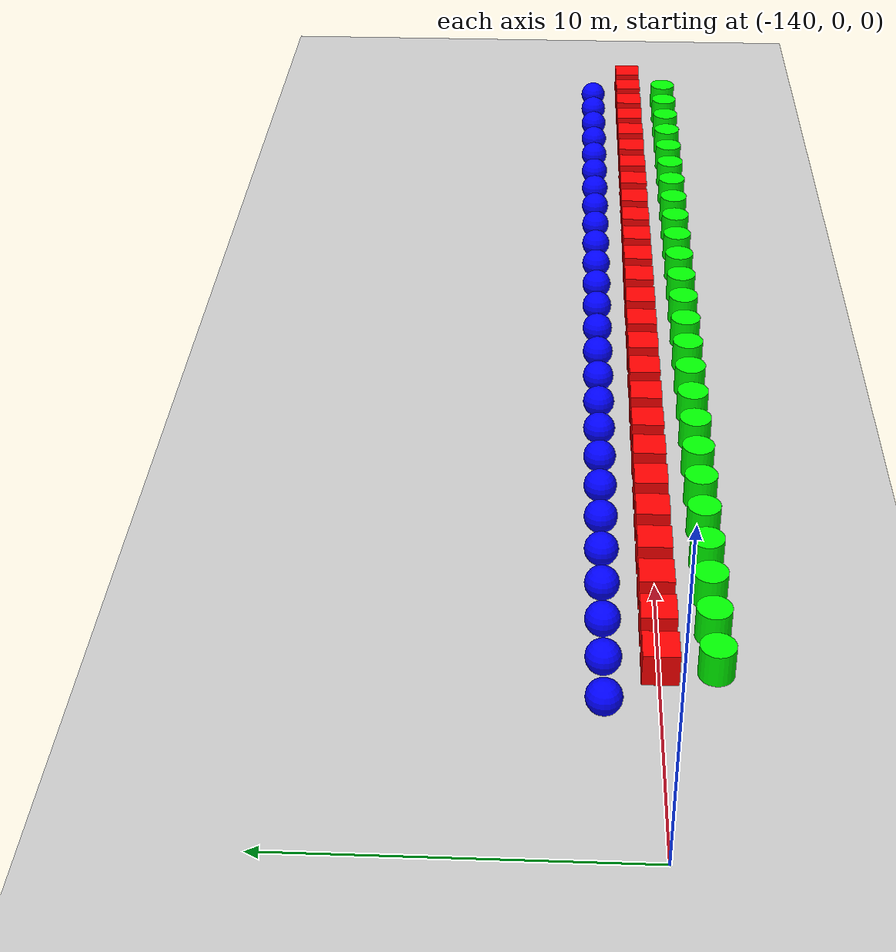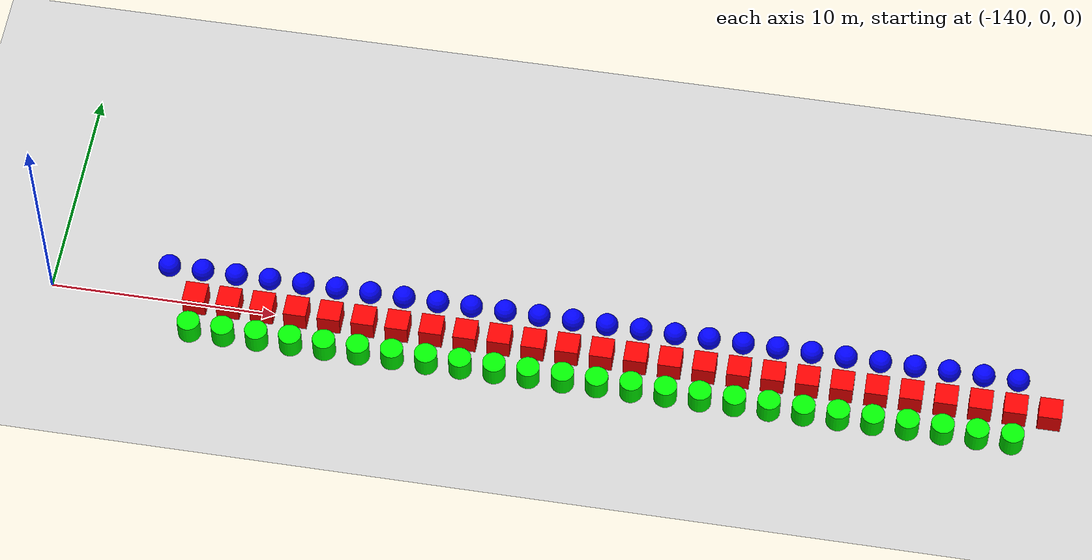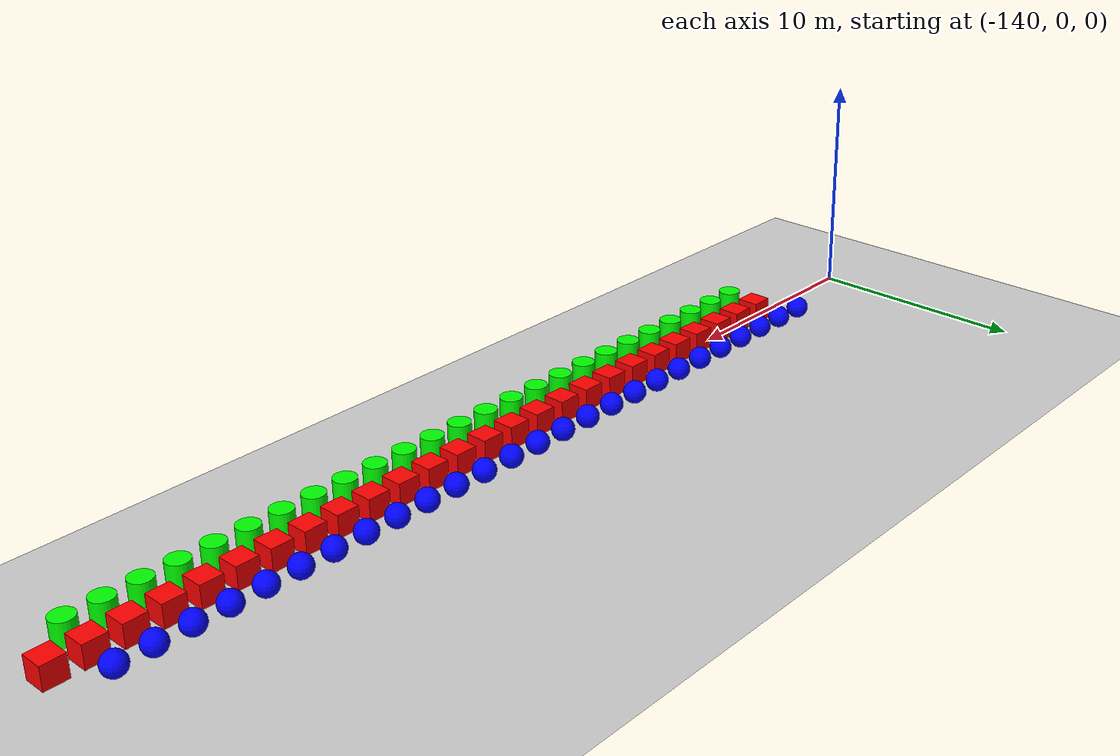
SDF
<sdf version="1.6">
 <world name="shapes">
  <model name="ground_plane">
   <static>true</static>
   <link name="link">
    <collision name="collision">
     <geometry><plane><normal>0 0 1</normal><size>100 100</size></plane></geometry>
    </collision>
    <visual name="visual">
     <geometry><plane><normal>0 0 1</normal><size>100 100</size></plane></geometry>
     <material>
      <ambient>0.8 0.8 0.8 1</ambient>
      <diffuse>0.8 0.8 0.8 1</diffuse>
      <specular>0.8 0.8 0.8 1</specular>
     </material>
    </visual>
   </link>
  </model>
  <model name="sphere_410">
   <static>false</static>
   <pose>-135.0 1.5 0.5 0 0 0</pose>
   <link name="sphere_link">
    <inertial>
     <inertia><ixx>3</ixx><ixy>0</ixy><ixz>0</ixz><iyy>3</iyy><iyz>0</iyz><izz>3</izz></inertia>
     <mass>3.0</mass>
    </inertial>
    <collision name="sphere_collision"><geometry><sphere><radius>0.5</radius></sphere></geometry></collision>
    <visual name="sphere_visual">
     <geometry><sphere><radius>0.5</radius></sphere></geometry>
     <material><ambient>0 0 1 1</ambient><diffuse>0 0 1 1</diffuse><specular>0 0 1 1</specular></material>
    </visual>
   </link>
  </model>
  <model name="box_411">
   <static>false</static>
   <pose>-133.5 0 0.5 0 0 0</pose>
   <link name="box_link">
    <inertial>
     <inertia><ixx>1</ixx><ixy>0</ixy><ixz>0</ixz><iyy>1</iyy><iyz>0</iyz><izz>1</izz></inertia>
     <mass>1.0</mass>
    </inertial>
    <collision name="box_collision"><geometry><box><size>1 1 1</size></box></geometry></collision>
    <visual name="box_visual">
     <geometry><box><size>1 1 1</size></box></geometry>
     <material><ambient>1 0 0 1</ambient><diffuse>1 0 0 1</diffuse><specular>1 0 0 1</specular></material>
    </visual>
   </link>
  </model>
  <model name="cylinder_411">
   <static>false</static>
   <pose>-133.5 -1.5 0.5 0 0 0</pose>
   <link name="cylinder_link">
    <inertial>
     <inertia><ixx>2</ixx><ixy>0</ixy><ixz>0</ixz><iyy>2</iyy><iyz>0</iyz><izz>2</izz></inertia>
     <mass>2.0</mass>
    </inertial>
    <collision name="cylinder_collision">
     <geometry><cylinder><radius>0.5</radius><length>1.0</length></cylinder></geometry>
    </collision>
    <visual name="cylinder_visual">
     <geometry><cylinder><radius>0.5</radius><length>1.0</length></cylinder></geometry>
     <material><ambient>0 1 0 1</ambient><diffuse>0 1 0 1</diffuse><specular>0 1 0 1</specular></material>
    </visual>
   </link>
  </model>
  <model name="sphere_411">
   <static>false</static>
   <pose>-133.5 1.5 0.5 0 0 0</pose>
   <link name="sphere_link">
    <inertial>
     <inertia><ixx>3</ixx><ixy>0</ixy><ixz>0</ixz><iyy>3</iyy><iyz>0</iyz><izz>3</izz></inertia>
     <mass>3.0</mass>
    </inertial>
    <collision name="sphere_collision"><geometry><sphere><radius>0.5</radius></sphere></geometry></collision>
    <visual name="sphere_visual">
     <geometry><sphere><radius>0.5</radius></sphere></geometry>
     <material><ambient>0 0 1 1</ambient><diffuse>0 0 1 1</diffuse><specular>0 0 1 1</specular></material>
    </visual>
   </link>
  </model>
  <model name="box_412">
   <static>false</static>
   <pose>-132.0 0 0.5 0 0 0</pose>
   <link name="box_link">
    <inertial>
     <inertia><ixx>1</ixx><ixy>0</ixy><ixz>0</ixz><iyy>1</iyy><iyz>0</iyz><izz>1</izz></inertia>
     <mass>1.0</mass>
    </inertial>
    <collision name="box_collision"><geometry><box><size>1 1 1</size></box></geometry></collision>
    <visual name="box_visual">
     <geometry><box><size>1 1 1</size></box></geometry>
     <material><ambient>1 0 0 1</ambient><diffuse>1 0 0 1</diffuse><specular>1 0 0 1</specular></material>
    </visual>
   </link>
  </model>
  <model name="cylinder_412">
   <static>false</static>
   <pose>-132.0 -1.5 0.5 0 0 0</pose>
   <link name="cylinder_link">
    <inertial>
     <inertia><ixx>2</ixx><ixy>0</ixy><ixz>0</ixz><iyy>2</iyy><iyz>0</iyz><izz>2</izz></inertia>
     <mass>2.0</mass>
    </inertial>
    <collision name="cylinder_collision">
     <geometry><cylinder><radius>0.5</radius><length>1.0</length></cylinder></geometry>
    </collision>
    <visual name="cylinder_visual">
     <geometry><cylinder><radius>0.5</radius><length>1.0</length></cylinder></geometry>
     <material><ambient>0 1 0 1</ambient><diffuse>0 1 0 1</diffuse><specular>0 1 0 1</specular></material>
    </visual>
   </link>
  </model>
  <model name="sphere_412">
   <static>false</static>
   <pose>-132.0 1.5 0.5 0 0 0</pose>
   <link name="sphere_link">
    <inertial>
     <inertia><ixx>3</ixx><ixy>0</ixy><ixz>0</ixz><iyy>3</iyy><iyz>0</iyz><izz>3</izz></inertia>
     <mass>3.0</mass>
    </inertial>
    <collision name="sphere_collision"><geometry><sphere><radius>0.5</radius></sphere></geometry></collision>
    <visual name="sphere_visual">
     <geometry><sphere><radius>0.5</radius></sphere></geometry>
     <material><ambient>0 0 1 1</ambient><diffuse>0 0 1 1</diffuse><specular>0 0 1 1</specular></material>
    </visual>
   </link>
  </model>
  <model name="box_413">
   <static>false</static>
   <pose>-130.5 0 0.5 0 0 0</pose>
   <link name="box_link">
    <inertial>
     <inertia><ixx>1</ixx><ixy>0</ixy><ixz>0</ixz><iyy>1</iyy><iyz>0</iyz><izz>1</izz></inertia>
     <mass>1.0</mass>
    </inertial>
    <collision name="box_collision"><geometry><box><size>1 1 1</size></box></geometry></collision>
    <visual name="box_visual">
     <geometry><box><size>1 1 1</size></box></geometry>
     <material><ambient>1 0 0 1</ambient><diffuse>1 0 0 1</diffuse><specular>1 0 0 1</specular></material>
    </visual>
   </link>
  </model>
  <model name="cylinder_413">
   <static>false</static>
   <pose>-130.5 -1.5 0.5 0 0 0</pose>
   <link name="cylinder_link">
    <inertial>
     <inertia><ixx>2</ixx><ixy>0</ixy><ixz>0</ixz><iyy>2</iyy><iyz>0</iyz><izz>2</izz></inertia>
     <mass>2.0</mass>
    </inertial>
    <collision name="cylinder_collision">
     <geometry><cylinder><radius>0.5</radius><length>1.0</length></cylinder></geometry>
    </collision>
    <visual name="cylinder_visual">
     <geometry><cylinder><radius>0.5</radius><length>1.0</length></cylinder></geometry>
     <material><ambient>0 1 0 1</ambient><diffuse>0 1 0 1</diffuse><specular>0 1 0 1</specular></material>
    </visual>
   </link>
  </model>
  <model name="sphere_413">
   <static>false</static>
   <pose>-130.5 1.5 0.5 0 0 0</pose>
   <link name="sphere_link">
    <inertial>
     <inertia><ixx>3</ixx><ixy>0</ixy><ixz>0</ixz><iyy>3</iyy><iyz>0</iyz><izz>3</izz></inertia>
     <mass>3.0</mass>
    </inertial>
    <collision name="sphere_collision"><geometry><sphere><radius>0.5</radius></sphere></geometry></collision>
    <visual name="sphere_visual">
     <geometry><sphere><radius>0.5</radius></sphere></geometry>
     <material><ambient>0 0 1 1</ambient><diffuse>0 0 1 1</diffuse><specular>0 0 1 1</specular></material>
    </visual>
   </link>
  </model>
  <model name="box_414">
   <static>false</static>
   <pose>-129.0 0 0.5 0 0 0</pose>
   <link name="box_link">
    <inertial>
     <inertia><ixx>1</ixx><ixy>0</ixy><ixz>0</ixz><iyy>1</iyy><iyz>0</iyz><izz>1</izz></inertia>
     <mass>1.0</mass>
    </inertial>
    <collision name="box_collision"><geometry><box><size>1 1 1</size></box></geometry></collision>
    <visual name="box_visual">
     <geometry><box><size>1 1 1</size></box></geometry>
     <material><ambient>1 0 0 1</ambient><diffuse>1 0 0 1</diffuse><specular>1 0 0 1</specular></material>
    </visual>
   </link>
  </model>
  <model name="cylinder_414">
   <static>false</static>
   <pose>-129.0 -1.5 0.5 0 0 0</pose>
   <link name="cylinder_link">
    <inertial>
     <inertia><ixx>2</ixx><ixy>0</ixy><ixz>0</ixz><iyy>2</iyy><iyz>0</iyz><izz>2</izz></inertia>
     <mass>2.0</mass>
    </inertial>
    <collision name="cylinder_collision">
     <geometry><cylinder><radius>0.5</radius><length>1.0</length></cylinder></geometry>
    </collision>
    <visual name="cylinder_visual">
     <geometry><cylinder><radius>0.5</radius><length>1.0</length></cylinder></geometry>
     <material><ambient>0 1 0 1</ambient><diffuse>0 1 0 1</diffuse><specular>0 1 0 1</specular></material>
    </visual>
   </link>
  </model>
  <model name="sphere_414">
   <static>false</static>
   <pose>-129.0 1.5 0.5 0 0 0</pose>
   <link name="sphere_link">
    <inertial>
     <inertia><ixx>3</ixx><ixy>0</ixy><ixz>0</ixz><iyy>3</iyy><iyz>0</iyz><izz>3</izz></inertia>
     <mass>3.0</mass>
    </inertial>
    <collision name="sphere_collision"><geometry><sphere><radius>0.5</radius></sphere></geometry></collision>
    <visual name="sphere_visual">
     <geometry><sphere><radius>0.5</radius></sphere></geometry>
     <material><ambient>0 0 1 1</ambient><diffuse>0 0 1 1</diffuse><specular>0 0 1 1</specular></material>
    </visual>
   </link>
  </model>
  <model name="box_415">
   <static>false</static>
   <pose>-127.5 0 0.5 0 0 0</pose>
   <link name="box_link">
    <inertial>
     <inertia><ixx>1</ixx><ixy>0</ixy><ixz>0</ixz><iyy>1</iyy><iyz>0</iyz><izz>1</izz></inertia>
     <mass>1.0</mass>
    </inertial>
    <collision name="box_collision"><geometry><box><size>1 1 1</size></box></geometry></collision>
    <visual name="box_visual">
     <geometry><box><size>1 1 1</size></box></geometry>
     <material><ambient>1 0 0 1</ambient><diffuse>1 0 0 1</diffuse><specular>1 0 0 1</specular></material>
    </visual>
   </link>
  </model>
  <model name="cylinder_415">
   <static>false</static>
   <pose>-127.5 -1.5 0.5 0 0 0</pose>
   <link name="cylinder_link">
    <inertial>
     <inertia><ixx>2</ixx><ixy>0</ixy><ixz>0</ixz><iyy>2</iyy><iyz>0</iyz><izz>2</izz></inertia>
     <mass>2.0</mass>
    </inertial>
    <collision name="cylinder_collision">
     <geometry><cylinder><radius>0.5</radius><length>1.0</length></cylinder></geometry>
    </collision>
    <visual name="cylinder_visual">
     <geometry><cylinder><radius>0.5</radius><length>1.0</length></cylinder></geometry>
     <material><ambient>0 1 0 1</ambient><diffuse>0 1 0 1</diffuse><specular>0 1 0 1</specular></material>
    </visual>
   </link>
  </model>
  <model name="sphere_415">
   <static>false</static>
   <pose>-127.5 1.5 0.5 0 0 0</pose>
   <link name="sphere_link">
    <inertial>
     <inertia><ixx>3</ixx><ixy>0</ixy><ixz>0</ixz><iyy>3</iyy><iyz>0</iyz><izz>3</izz></inertia>
     <mass>3.0</mass>
    </inertial>
    <collision name="sphere_collision"><geometry><sphere><radius>0.5</radius></sphere></geometry></collision>
    <visual name="sphere_visual">
     <geometry><sphere><radius>0.5</radius></sphere></geometry>
     <material><ambient>0 0 1 1</ambient><diffuse>0 0 1 1</diffuse><specular>0 0 1 1</specular></material>
    </visual>
   </link>
  </model>
  <model name="box_416">
   <static>false</static>
   <pose>-126.0 0 0.5 0 0 0</pose>
   <link name="box_link">
    <inertial>
     <inertia><ixx>1</ixx><ixy>0</ixy><ixz>0</ixz><iyy>1</iyy><iyz>0</iyz><izz>1</izz></inertia>
     <mass>1.0</mass>
    </inertial>
    <collision name="box_collision"><geometry><box><size>1 1 1</size></box></geometry></collision>
    <visual name="box_visual">
     <geometry><box><size>1 1 1</size></box></geometry>
     <material><ambient>1 0 0 1</ambient><diffuse>1 0 0 1</diffuse><specular>1 0 0 1</specular></material>
    </visual>
   </link>
  </model>
  <model name="cylinder_416">
   <static>false</static>
   <pose>-126.0 -1.5 0.5 0 0 0</pose>
   <link name="cylinder_link">
    <inertial>
     <inertia><ixx>2</ixx><ixy>0</ixy><ixz>0</ixz><iyy>2</iyy><iyz>0</iyz><izz>2</izz></inertia>
     <mass>2.0</mass>
    </inertial>
    <collision name="cylinder_collision">
     <geometry><cylinder><radius>0.5</radius><length>1.0</length></cylinder></geometry>
    </collision>
    <visual name="cylinder_visual">
     <geometry><cylinder><radius>0.5</radius><length>1.0</length></cylinder></geometry>
     <material><ambient>0 1 0 1</ambient><diffuse>0 1 0 1</diffuse><specular>0 1 0 1</specular></material>
    </visual>
   </link>
  </model>
  <model name="sphere_416">
   <static>false</static>
   <pose>-126.0 1.5 0.5 0 0 0</pose>
   <link name="sphere_link">
    <inertial>
     <inertia><ixx>3</ixx><ixy>0</ixy><ixz>0</ixz><iyy>3</iyy><iyz>0</iyz><izz>3</izz></inertia>
     <mass>3.0</mass>
    </inertial>
    <collision name="sphere_collision"><geometry><sphere><radius>0.5</radius></sphere></geometry></collision>
    <visual name="sphere_visual">
     <geometry><sphere><radius>0.5</radius></sphere></geometry>
     <material><ambient>0 0 1 1</ambient><diffuse>0 0 1 1</diffuse><specular>0 0 1 1</specular></material>
    </visual>
   </link>
  </model>
  <model name="box_417">
   <static>false</static>
   <pose>-124.5 0 0.5 0 0 0</pose>
   <link name="box_link">
    <inertial>
     <inertia><ixx>1</ixx><ixy>0</ixy><ixz>0</ixz><iyy>1</iyy><iyz>0</iyz><izz>1</izz></inertia>
     <mass>1.0</mass>
    </inertial>
    <collision name="box_collision"><geometry><box><size>1 1 1</size></box></geometry></collision>
    <visual name="box_visual">
     <geometry><box><size>1 1 1</size></box></geometry>
     <material><ambient>1 0 0 1</ambient><diffuse>1 0 0 1</diffuse><specular>1 0 0 1</specular></material>
    </visual>
   </link>
  </model>
  <model name="cylinder_417">
   <static>false</static>
   <pose>-124.5 -1.5 0.5 0 0 0</pose>
   <link name="cylinder_link">
    <inertial>
     <inertia><ixx>2</ixx><ixy>0</ixy><ixz>0</ixz><iyy>2</iyy><iyz>0</iyz><izz>2</izz></inertia>
     <mass>2.0</mass>
    </inertial>
    <collision name="cylinder_collision">
     <geometry><cylinder><radius>0.5</radius><length>1.0</length></cylinder></geometry>
    </collision>
    <visual name="cylinder_visual">
     <geometry><cylinder><radius>0.5</radius><length>1.0</length></cylinder></geometry>
     <material><ambient>0 1 0 1</ambient><diffuse>0 1 0 1</diffuse><specular>0 1 0 1</specular></material>
    </visual>
   </link>
  </model>
  <model name="sphere_417">
   <static>false</static>
   <pose>-124.5 1.5 0.5 0 0 0</pose>
   <link name="sphere_link">
    <inertial>
     <inertia><ixx>3</ixx><ixy>0</ixy><ixz>0</ixz><iyy>3</iyy><iyz>0</iyz><izz>3</izz></inertia>
     <mass>3.0</mass>
    </inertial>
    <collision name="sphere_collision"><geometry><sphere><radius>0.5</radius></sphere></geometry></collision>
    <visual name="sphere_visual">
     <geometry><sphere><radius>0.5</radius></sphere></geometry>
     <material><ambient>0 0 1 1</ambient><diffuse>0 0 1 1</diffuse><specular>0 0 1 1</specular></material>
    </visual>
   </link>
  </model>
  <model name="box_418">
   <static>false</static>
   <pose>-123.0 0 0.5 0 0 0</pose>
   <link name="box_link">
    <inertial>
     <inertia><ixx>1</ixx><ixy>0</ixy><ixz>0</ixz><iyy>1</iyy><iyz>0</iyz><izz>1</izz></inertia>
     <mass>1.0</mass>
    </inertial>
    <collision name="box_collision"><geometry><box><size>1 1 1</size></box></geometry></collision>
    <visual name="box_visual">
     <geometry><box><size>1 1 1</size></box></geometry>
     <material><ambient>1 0 0 1</ambient><diffuse>1 0 0 1</diffuse><specular>1 0 0 1</specular></material>
    </visual>
   </link>
  </model>
  <model name="cylinder_418">
   <static>false</static>
   <pose>-123.0 -1.5 0.5 0 0 0</pose>
   <link name="cylinder_link">
    <inertial>
     <inertia><ixx>2</ixx><ixy>0</ixy><ixz>0</ixz><iyy>2</iyy><iyz>0</iyz><izz>2</izz></inertia>
     <mass>2.0</mass>
    </inertial>
    <collision name="cylinder_collision">
     <geometry><cylinder><radius>0.5</radius><length>1.0</length></cylinder></geometry>
    </collision>
    <visual name="cylinder_visual">
     <geometry><cylinder><radius>0.5</radius><length>1.0</length></cylinder></geometry>
     <material><ambient>0 1 0 1</ambient><diffuse>0 1 0 1</diffuse><specular>0 1 0 1</specular></material>
    </visual>
   </link>
  </model>
  <model name="sphere_418">
   <static>false</static>
   <pose>-123.0 1.5 0.5 0 0 0</pose>
   <link name="sphere_link">
    <inertial>
     <inertia><ixx>3</ixx><ixy>0</ixy><ixz>0</ixz><iyy>3</iyy><iyz>0</iyz><izz>3</izz></inertia>
     <mass>3.0</mass>
    </inertial>
    <collision name="sphere_collision"><geometry><sphere><radius>0.5</radius></sphere></geometry></collision>
    <visual name="sphere_visual">
     <geometry><sphere><radius>0.5</radius></sphere></geometry>
     <material><ambient>0 0 1 1</ambient><diffuse>0 0 1 1</diffuse><specular>0 0 1 1</specular></material>
    </visual>
   </link>
  </model>
  <model name="box_419">
   <static>false</static>
   <pose>-121.5 0 0.5 0 0 0</pose>
   <link name="box_link">
    <inertial>
     <inertia><ixx>1</ixx><ixy>0</ixy><ixz>0</ixz><iyy>1</iyy><iyz>0</iyz><izz>1</izz></inertia>
     <mass>1.0</mass>
    </inertial>
    <collision name="box_collision"><geometry><box><size>1 1 1</size></box></geometry></collision>
    <visual name="box_visual">
     <geometry><box><size>1 1 1</size></box></geometry>
     <material><ambient>1 0 0 1</ambient><diffuse>1 0 0 1</diffuse><specular>1 0 0 1</specular></material>
    </visual>
   </link>
  </model>
  <model name="cylinder_419">
   <static>false</static>
   <pose>-121.5 -1.5 0.5 0 0 0</pose>
   <link name="cylinder_link">
    <inertial>
     <inertia><ixx>2</ixx><ixy>0</ixy><ixz>0</ixz><iyy>2</iyy><iyz>0</iyz><izz>2</izz></inertia>
     <mass>2.0</mass>
    </inertial>
    <collision name="cylinder_collision">
     <geometry><cylinder><radius>0.5</radius><length>1.0</length></cylinder></geometry>
    </collision>
    <visual name="cylinder_visual">
     <geometry><cylinder><radius>0.5</radius><length>1.0</length></cylinder></geometry>
     <material><ambient>0 1 0 1</ambient><diffuse>0 1 0 1</diffuse><specular>0 1 0 1</specular></material>
    </visual>
   </link>
  </model>
  <model name="sphere_419">
   <static>false</static>
   <pose>-121.5 1.5 0.5 0 0 0</pose>
   <link name="sphere_link">
    <inertial>
     <inertia><ixx>3</ixx><ixy>0</ixy><ixz>0</ixz><iyy>3</iyy><iyz>0</iyz><izz>3</izz></inertia>
     <mass>3.0</mass>
    </inertial>
    <collision name="sphere_collision"><geometry><sphere><radius>0.5</radius></sphere></geometry></collision>
    <visual name="sphere_visual">
     <geometry><sphere><radius>0.5</radius></sphere></geometry>
     <material><ambient>0 0 1 1</ambient><diffuse>0 0 1 1</diffuse><specular>0 0 1 1</specular></material>
    </visual>
   </link>
  </model>
  <model name="box_420">
   <static>false</static>
   <pose>-120.0 0 0.5 0 0 0</pose>
   <link name="box_link">
    <inertial>
     <inertia><ixx>1</ixx><ixy>0</ixy><ixz>0</ixz><iyy>1</iyy><iyz>0</iyz><izz>1</izz></inertia>
     <mass>1.0</mass>
    </inertial>
    <collision name="box_collision"><geometry><box><size>1 1 1</size></box></geometry></collision>
    <visual name="box_visual">
     <geometry><box><size>1 1 1</size></box></geometry>
     <material><ambient>1 0 0 1</ambient><diffuse>1 0 0 1</diffuse><specular>1 0 0 1</specular></material>
    </visual>
   </link>
  </model>
  <model name="cylinder_420">
   <static>false</static>
   <pose>-120.0 -1.5 0.5 0 0 0</pose>
   <link name="cylinder_link">
    <inertial>
     <inertia><ixx>2</ixx><ixy>0</ixy><ixz>0</ixz><iyy>2</iyy><iyz>0</iyz><izz>2</izz></inertia>
     <mass>2.0</mass>
    </inertial>
    <collision name="cylinder_collision">
     <geometry><cylinder><radius>0.5</radius><length>1.0</length></cylinder></geometry>
    </collision>
    <visual name="cylinder_visual">
     <geometry><cylinder><radius>0.5</radius><length>1.0</length></cylinder></geometry>
     <material><ambient>0 1 0 1</ambient><diffuse>0 1 0 1</diffuse><specular>0 1 0 1</specular></material>
    </visual>
   </link>
  </model>
  <model name="sphere_420">
   <static>false</static>
   <pose>-120.0 1.5 0.5 0 0 0</pose>
   <link name="sphere_link">
    <inertial>
     <inertia><ixx>3</ixx><ixy>0</ixy><ixz>0</ixz><iyy>3</iyy><iyz>0</iyz><izz>3</izz></inertia>
     <mass>3.0</mass>
    </inertial>
    <collision name="sphere_collision"><geometry><sphere><radius>0.5</radius></sphere></geometry></collision>
    <visual name="sphere_visual">
     <geometry><sphere><radius>0.5</radius></sphere></geometry>
     <material><ambient>0 0 1 1</ambient><diffuse>0 0 1 1</diffuse><specular>0 0 1 1</specular></material>
    </visual>
   </link>
  </model>
  <model name="box_421">
   <static>false</static>
   <pose>-118.5 0 0.5 0 0 0</pose>
   <link name="box_link">
    <inertial>
     <inertia><ixx>1</ixx><ixy>0</ixy><ixz>0</ixz><iyy>1</iyy><iyz>0</iyz><izz>1</izz></inertia>
     <mass>1.0</mass>
    </inertial>
    <collision name="box_collision"><geometry><box><size>1 1 1</size></box></geometry></collision>
    <visual name="box_visual">
     <geometry><box><size>1 1 1</size></box></geometry>
     <material><ambient>1 0 0 1</ambient><diffuse>1 0 0 1</diffuse><specular>1 0 0 1</specular></material>
    </visual>
   </link>
  </model>
  <model name="cylinder_421">
   <static>false</static>
   <pose>-118.5 -1.5 0.5 0 0 0</pose>
   <link name="cylinder_link">
    <inertial>
     <inertia><ixx>2</ixx><ixy>0</ixy><ixz>0</ixz><iyy>2</iyy><iyz>0</iyz><izz>2</izz></inertia>
     <mass>2.0</mass>
    </inertial>
    <collision name="cylinder_collision">
     <geometry><cylinder><radius>0.5</radius><length>1.0</length></cylinder></geometry>
    </collision>
    <visual name="cylinder_visual">
     <geometry><cylinder><radius>0.5</radius><length>1.0</length></cylinder></geometry>
     <material><ambient>0 1 0 1</ambient><diffuse>0 1 0 1</diffuse><specular>0 1 0 1</specular></material>
    </visual>
   </link>
  </model>
  <model name="sphere_421">
   <static>false</static>
   <pose>-118.5 1.5 0.5 0 0 0</pose>
   <link name="sphere_link">
    <inertial>
     <inertia><ixx>3</ixx><ixy>0</ixy><ixz>0</ixz><iyy>3</iyy><iyz>0</iyz><izz>3</izz></inertia>
     <mass>3.0</mass>
    </inertial>
    <collision name="sphere_collision"><geometry><sphere><radius>0.5</radius></sphere></geometry></collision>
    <visual name="sphere_visual">
     <geometry><sphere><radius>0.5</radius></sphere></geometry>
     <material><ambient>0 0 1 1</ambient><diffuse>0 0 1 1</diffuse><specular>0 0 1 1</specular></material>
    </visual>
   </link>
  </model>
  <model name="box_422">
   <static>false</static>
   <pose>-117.0 0 0.5 0 0 0</pose>
   <link name="box_link">
    <inertial>
     <inertia><ixx>1</ixx><ixy>0</ixy><ixz>0</ixz><iyy>1</iyy><iyz>0</iyz><izz>1</izz></inertia>
     <mass>1.0</mass>
    </inertial>
    <collision name="box_collision"><geometry><box><size>1 1 1</size></box></geometry></collision>
    <visual name="box_visual">
     <geometry><box><size>1 1 1</size></box></geometry>
     <material><ambient>1 0 0 1</ambient><diffuse>1 0 0 1</diffuse><specular>1 0 0 1</specular></material>
    </visual>
   </link>
  </model>
  <model name="cylinder_422">
   <static>false</static>
   <pose>-117.0 -1.5 0.5 0 0 0</pose>
   <link name="cylinder_link">
    <inertial>
     <inertia><ixx>2</ixx><ixy>0</ixy><ixz>0</ixz><iyy>2</iyy><iyz>0</iyz><izz>2</izz></inertia>
     <mass>2.0</mass>
    </inertial>
    <collision name="cylinder_collision">
     <geometry><cylinder><radius>0.5</radius><length>1.0</length></cylinder></geometry>
    </collision>
    <visual name="cylinder_visual">
     <geometry><cylinder><radius>0.5</radius><length>1.0</length></cylinder></geometry>
     <material><ambient>0 1 0 1</ambient><diffuse>0 1 0 1</diffuse><specular>0 1 0 1</specular></material>
    </visual>
   </link>
  </model>
  <model name="sphere_422">
   <static>false</static>
   <pose>-117.0 1.5 0.5 0 0 0</pose>
   <link name="sphere_link">
    <inertial>
     <inertia><ixx>3</ixx><ixy>0</ixy><ixz>0</ixz><iyy>3</iyy><iyz>0</iyz><izz>3</izz></inertia>
     <mass>3.0</mass>
    </inertial>
    <collision name="sphere_collision"><geometry><sphere><radius>0.5</radius></sphere></geometry></collision>
    <visual name="sphere_visual">
     <geometry><sphere><radius>0.5</radius></sphere></geometry>
     <material><ambient>0 0 1 1</ambient><diffuse>0 0 1 1</diffuse><specular>0 0 1 1</specular></material>
    </visual>
   </link>
  </model>
  <model name="box_423">
   <static>false</static>
   <pose>-115.5 0 0.5 0 0 0</pose>
   <link name="box_link">
    <inertial>
     <inertia><ixx>1</ixx><ixy>0</ixy><ixz>0</ixz><iyy>1</iyy><iyz>0</iyz><izz>1</izz></inertia>
     <mass>1.0</mass>
    </inertial>
    <collision name="box_collision"><geometry><box><size>1 1 1</size></box></geometry></collision>
    <visual name="box_visual">
     <geometry><box><size>1 1 1</size></box></geometry>
     <material><ambient>1 0 0 1</ambient><diffuse>1 0 0 1</diffuse><specular>1 0 0 1</specular></material>
    </visual>
   </link>
  </model>
  <model name="cylinder_423">
   <static>false</static>
   <pose>-115.5 -1.5 0.5 0 0 0</pose>
   <link name="cylinder_link">
    <inertial>
     <inertia><ixx>2</ixx><ixy>0</ixy><ixz>0</ixz><iyy>2</iyy><iyz>0</iyz><izz>2</izz></inertia>
     <mass>2.0</mass>
    </inertial>
    <collision name="cylinder_collision">
     <geometry><cylinder><radius>0.5</radius><length>1.0</length></cylinder></geometry>
    </collision>
    <visual name="cylinder_visual">
     <geometry><cylinder><radius>0.5</radius><length>1.0</length></cylinder></geometry>
     <material><ambient>0 1 0 1</ambient><diffuse>0 1 0 1</diffuse><specular>0 1 0 1</specular></material>
    </visual>
   </link>
  </model>
  <model name="sphere_423">
   <static>false</static>
   <pose>-115.5 1.5 0.5 0 0 0</pose>
   <link name="sphere_link">
    <inertial>
     <inertia><ixx>3</ixx><ixy>0</ixy><ixz>0</ixz><iyy>3</iyy><iyz>0</iyz><izz>3</izz></inertia>
     <mass>3.0</mass>
    </inertial>
    <collision name="sphere_collision"><geometry><sphere><radius>0.5</radius></sphere></geometry></collision>
    <visual name="sphere_visual">
     <geometry><sphere><radius>0.5</radius></sphere></geometry>
     <material><ambient>0 0 1 1</ambient><diffuse>0 0 1 1</diffuse><specular>0 0 1 1</specular></material>
    </visual>
   </link>
  </model>
  <model name="box_424">
   <static>false</static>
   <pose>-114.0 0 0.5 0 0 0</pose>
   <link name="box_link">
    <inertial>
     <inertia><ixx>1</ixx><ixy>0</ixy><ixz>0</ixz><iyy>1</iyy><iyz>0</iyz><izz>1</izz></inertia>
     <mass>1.0</mass>
    </inertial>
    <collision name="box_collision"><geometry><box><size>1 1 1</size></box></geometry></collision>
    <visual name="box_visual">
     <geometry><box><size>1 1 1</size></box></geometry>
     <material><ambient>1 0 0 1</ambient><diffuse>1 0 0 1</diffuse><specular>1 0 0 1</specular></material>
    </visual>
   </link>
  </model>
  <model name="cylinder_424">
   <static>false</static>
   <pose>-114.0 -1.5 0.5 0 0 0</pose>
   <link name="cylinder_link">
    <inertial>
     <inertia><ixx>2</ixx><ixy>0</ixy><ixz>0</ixz><iyy>2</iyy><iyz>0</iyz><izz>2</izz></inertia>
     <mass>2.0</mass>
    </inertial>
    <collision name="cylinder_collision">
     <geometry><cylinder><radius>0.5</radius><length>1.0</length></cylinder></geometry>
    </collision>
    <visual name="cylinder_visual">
     <geometry><cylinder><radius>0.5</radius><length>1.0</length></cylinder></geometry>
     <material><ambient>0 1 0 1</ambient><diffuse>0 1 0 1</diffuse><specular>0 1 0 1</specular></material>
    </visual>
   </link>
  </model>
  <model name="sphere_424">
   <static>false</static>
   <pose>-114.0 1.5 0.5 0 0 0</pose>
   <link name="sphere_link">
    <inertial>
     <inertia><ixx>3</ixx><ixy>0</ixy><ixz>0</ixz><iyy>3</iyy><iyz>0</iyz><izz>3</izz></inertia>
     <mass>3.0</mass>
    </inertial>
    <collision name="sphere_collision"><geometry><sphere><radius>0.5</radius></sphere></geometry></collision>
    <visual name="sphere_visual">
     <geometry><sphere><radius>0.5</radius></sphere></geometry>
     <material><ambient>0 0 1 1</ambient><diffuse>0 0 1 1</diffuse><specular>0 0 1 1</specular></material>
    </visual>
   </link>
  </model>
  <model name="box_425">
   <static>false</static>
   <pose>-112.5 0 0.5 0 0 0</pose>
   <link name="box_link">
    <inertial>
     <inertia><ixx>1</ixx><ixy>0</ixy><ixz>0</ixz><iyy>1</iyy><iyz>0</iyz><izz>1</izz></inertia>
     <mass>1.0</mass>
    </inertial>
    <collision name="box_collision"><geometry><box><size>1 1 1</size></box></geometry></collision>
    <visual name="box_visual">
     <geometry><box><size>1 1 1</size></box></geometry>
     <material><ambient>1 0 0 1</ambient><diffuse>1 0 0 1</diffuse><specular>1 0 0 1</specular></material>
    </visual>
   </link>
  </model>
  <model name="cylinder_425">
   <static>false</static>
   <pose>-112.5 -1.5 0.5 0 0 0</pose>
   <link name="cylinder_link">
    <inertial>
     <inertia><ixx>2</ixx><ixy>0</ixy><ixz>0</ixz><iyy>2</iyy><iyz>0</iyz><izz>2</izz></inertia>
     <mass>2.0</mass>
    </inertial>
    <collision name="cylinder_collision">
     <geometry><cylinder><radius>0.5</radius><length>1.0</length></cylinder></geometry>
    </collision>
    <visual name="cylinder_visual">
     <geometry><cylinder><radius>0.5</radius><length>1.0</length></cylinder></geometry>
     <material><ambient>0 1 0 1</ambient><diffuse>0 1 0 1</diffuse><specular>0 1 0 1</specular></material>
    </visual>
   </link>
  </model>
  <model name="sphere_425">
   <static>false</static>
   <pose>-112.5 1.5 0.5 0 0 0</pose>
   <link name="sphere_link">
    <inertial>
     <inertia><ixx>3</ixx><ixy>0</ixy><ixz>0</ixz><iyy>3</iyy><iyz>0</iyz><izz>3</izz></inertia>
     <mass>3.0</mass>
    </inertial>
    <collision name="sphere_collision"><geometry><sphere><radius>0.5</radius></sphere></geometry></collision>
    <visual name="sphere_visual">
     <geometry><sphere><radius>0.5</radius></sphere></geometry>
     <material><ambient>0 0 1 1</ambient><diffuse>0 0 1 1</diffuse><specular>0 0 1 1</specular></material>
    </visual>
   </link>
  </model>
  <model name="box_426">
   <static>false</static>
   <pose>-111.0 0 0.5 0 0 0</pose>
   <link name="box_link">
    <inertial>
     <inertia><ixx>1</ixx><ixy>0</ixy><ixz>0</ixz><iyy>1</iyy><iyz>0</iyz><izz>1</izz></inertia>
     <mass>1.0</mass>
    </inertial>
    <collision name="box_collision"><geometry><box><size>1 1 1</size></box></geometry></collision>
    <visual name="box_visual">
     <geometry><box><size>1 1 1</size></box></geometry>
     <material><ambient>1 0 0 1</ambient><diffuse>1 0 0 1</diffuse><specular>1 0 0 1</specular></material>
    </visual>
   </link>
  </model>
  <model name="cylinder_426">
   <static>false</static>
   <pose>-111.0 -1.5 0.5 0 0 0</pose>
   <link name="cylinder_link">
    <inertial>
     <inertia><ixx>2</ixx><ixy>0</ixy><ixz>0</ixz><iyy>2</iyy><iyz>0</iyz><izz>2</izz></inertia>
     <mass>2.0</mass>
    </inertial>
    <collision name="cylinder_collision">
     <geometry><cylinder><radius>0.5</radius><length>1.0</length></cylinder></geometry>
    </collision>
    <visual name="cylinder_visual">
     <geometry><cylinder><radius>0.5</radius><length>1.0</length></cylinder></geometry>
     <material><ambient>0 1 0 1</ambient><diffuse>0 1 0 1</diffuse><specular>0 1 0 1</specular></material>
    </visual>
   </link>
  </model>
  <model name="sphere_426">
   <static>false</static>
   <pose>-111.0 1.5 0.5 0 0 0</pose>
   <link name="sphere_link">
    <inertial>
     <inertia><ixx>3</ixx><ixy>0</ixy><ixz>0</ixz><iyy>3</iyy><iyz>0</iyz><izz>3</izz></inertia>
     <mass>3.0</mass>
    </inertial>
    <collision name="sphere_collision"><geometry><sphere><radius>0.5</radius></sphere></geometry></collision>
    <visual name="sphere_visual">
     <geometry><sphere><radius>0.5</radius></sphere></geometry>
     <material><ambient>0 0 1 1</ambient><diffuse>0 0 1 1</diffuse><specular>0 0 1 1</specular></material>
    </visual>
   </link>
  </model>
  <model name="box_427">
   <static>false</static>
   <pose>-109.5 0 0.5 0 0 0</pose>
   <link name="box_link">
    <inertial>
     <inertia><ixx>1</ixx><ixy>0</ixy><ixz>0</ixz><iyy>1</iyy><iyz>0</iyz><izz>1</izz></inertia>
     <mass>1.0</mass>
    </inertial>
    <collision name="box_collision"><geometry><box><size>1 1 1</size></box></geometry></collision>
    <visual name="box_visual">
     <geometry><box><size>1 1 1</size></box></geometry>
     <material><ambient>1 0 0 1</ambient><diffuse>1 0 0 1</diffuse><specular>1 0 0 1</specular></material>
    </visual>
   </link>
  </model>
  <model name="cylinder_427">
   <static>false</static>
   <pose>-109.5 -1.5 0.5 0 0 0</pose>
   <link name="cylinder_link">
    <inertial>
     <inertia><ixx>2</ixx><ixy>0</ixy><ixz>0</ixz><iyy>2</iyy><iyz>0</iyz><izz>2</izz></inertia>
     <mass>2.0</mass>
    </inertial>
    <collision name="cylinder_collision">
     <geometry><cylinder><radius>0.5</radius><length>1.0</length></cylinder></geometry>
    </collision>
    <visual name="cylinder_visual">
     <geometry><cylinder><radius>0.5</radius><length>1.0</length></cylinder></geometry>
     <material><ambient>0 1 0 1</ambient><diffuse>0 1 0 1</diffuse><specular>0 1 0 1</specular></material>
    </visual>
   </link>
  </model>
  <model name="sphere_427">
   <static>false</static>
   <pose>-109.5 1.5 0.5 0 0 0</pose>
   <link name="sphere_link">
    <inertial>
     <inertia><ixx>3</ixx><ixy>0</ixy><ixz>0</ixz><iyy>3</iyy><iyz>0</iyz><izz>3</izz></inertia>
     <mass>3.0</mass>
    </inertial>
    <collision name="sphere_collision"><geometry><sphere><radius>0.5</radius></sphere></geometry></collision>
    <visual name="sphere_visual">
     <geometry><sphere><radius>0.5</radius></sphere></geometry>
     <material><ambient>0 0 1 1</ambient><diffuse>0 0 1 1</diffuse><specular>0 0 1 1</specular></material>
    </visual>
   </link>
  </model>
  <model name="box_428">
   <static>false</static>
   <pose>-108.0 0 0.5 0 0 0</pose>
   <link name="box_link">
    <inertial>
     <inertia><ixx>1</ixx><ixy>0</ixy><ixz>0</ixz><iyy>1</iyy><iyz>0</iyz><izz>1</izz></inertia>
     <mass>1.0</mass>
    </inertial>
    <collision name="box_collision"><geometry><box><size>1 1 1</size></box></geometry></collision>
    <visual name="box_visual">
     <geometry><box><size>1 1 1</size></box></geometry>
     <material><ambient>1 0 0 1</ambient><diffuse>1 0 0 1</diffuse><specular>1 0 0 1</specular></material>
    </visual>
   </link>
  </model>
  <model name="cylinder_428">
   <static>false</static>
   <pose>-108.0 -1.5 0.5 0 0 0</pose>
   <link name="cylinder_link">
    <inertial>
     <inertia><ixx>2</ixx><ixy>0</ixy><ixz>0</ixz><iyy>2</iyy><iyz>0</iyz><izz>2</izz></inertia>
     <mass>2.0</mass>
    </inertial>
    <collision name="cylinder_collision">
     <geometry><cylinder><radius>0.5</radius><length>1.0</length></cylinder></geometry>
    </collision>
    <visual name="cylinder_visual">
     <geometry><cylinder><radius>0.5</radius><length>1.0</length></cylinder></geometry>
     <material><ambient>0 1 0 1</ambient><diffuse>0 1 0 1</diffuse><specular>0 1 0 1</specular></material>
    </visual>
   </link>
  </model>
  <model name="sphere_428">
   <static>false</static>
   <pose>-108.0 1.5 0.5 0 0 0</pose>
   <link name="sphere_link">
    <inertial>
     <inertia><ixx>3</ixx><ixy>0</ixy><ixz>0</ixz><iyy>3</iyy><iyz>0</iyz><izz>3</izz></inertia>
     <mass>3.0</mass>
    </inertial>
    <collision name="sphere_collision"><geometry><sphere><radius>0.5</radius></sphere></geometry></collision>
    <visual name="sphere_visual">
     <geometry><sphere><radius>0.5</radius></sphere></geometry>
     <material><ambient>0 0 1 1</ambient><diffuse>0 0 1 1</diffuse><specular>0 0 1 1</specular></material>
    </visual>
   </link>
  </model>
  <model name="box_429">
   <static>false</static>
   <pose>-106.5 0 0.5 0 0 0</pose>
   <link name="box_link">
    <inertial>
     <inertia><ixx>1</ixx><ixy>0</ixy><ixz>0</ixz><iyy>1</iyy><iyz>0</iyz><izz>1</izz></inertia>
     <mass>1.0</mass>
    </inertial>
    <collision name="box_collision"><geometry><box><size>1 1 1</size></box></geometry></collision>
    <visual name="box_visual">
     <geometry><box><size>1 1 1</size></box></geometry>
     <material><ambient>1 0 0 1</ambient><diffuse>1 0 0 1</diffuse><specular>1 0 0 1</specular></material>
    </visual>
   </link>
  </model>
  <model name="cylinder_429">
   <static>false</static>
   <pose>-106.5 -1.5 0.5 0 0 0</pose>
   <link name="cylinder_link">
    <inertial>
     <inertia><ixx>2</ixx><ixy>0</ixy><ixz>0</ixz><iyy>2</iyy><iyz>0</iyz><izz>2</izz></inertia>
     <mass>2.0</mass>
    </inertial>
    <collision name="cylinder_collision">
     <geometry><cylinder><radius>0.5</radius><length>1.0</length></cylinder></geometry>
    </collision>
    <visual name="cylinder_visual">
     <geometry><cylinder><radius>0.5</radius><length>1.0</length></cylinder></geometry>
     <material><ambient>0 1 0 1</ambient><diffuse>0 1 0 1</diffuse><specular>0 1 0 1</specular></material>
    </visual>
   </link>
  </model>
  <model name="sphere_429">
   <static>false</static>
   <pose>-106.5 1.5 0.5 0 0 0</pose>
   <link name="sphere_link">
    <inertial>
     <inertia><ixx>3</ixx><ixy>0</ixy><ixz>0</ixz><iyy>3</iyy><iyz>0</iyz><izz>3</izz></inertia>
     <mass>3.0</mass>
    </inertial>
    <collision name="sphere_collision"><geometry><sphere><radius>0.5</radius></sphere></geometry></collision>
    <visual name="sphere_visual">
     <geometry><sphere><radius>0.5</radius></sphere></geometry>
     <material><ambient>0 0 1 1</ambient><diffuse>0 0 1 1</diffuse><specular>0 0 1 1</specular></material>
    </visual>
   </link>
  </model>
  <model name="box_430">
   <static>false</static>
   <pose>-105.0 0 0.5 0 0 0</pose>
   <link name="box_link">
    <inertial>
     <inertia><ixx>1</ixx><ixy>0</ixy><ixz>0</ixz><iyy>1</iyy><iyz>0</iyz><izz>1</izz></inertia>
     <mass>1.0</mass>
    </inertial>
    <collision name="box_collision"><geometry><box><size>1 1 1</size></box></geometry></collision>
    <visual name="box_visual">
     <geometry><box><size>1 1 1</size></box></geometry>
     <material><ambient>1 0 0 1</ambient><diffuse>1 0 0 1</diffuse><specular>1 0 0 1</specular></material>
    </visual>
   </link>
  </model>
  <model name="cylinder_430">
   <static>false</static>
   <pose>-105.0 -1.5 0.5 0 0 0</pose>
   <link name="cylinder_link">
    <inertial>
     <inertia><ixx>2</ixx><ixy>0</ixy><ixz>0</ixz><iyy>2</iyy><iyz>0</iyz><izz>2</izz></inertia>
     <mass>2.0</mass>
    </inertial>
    <collision name="cylinder_collision">
     <geometry><cylinder><radius>0.5</radius><length>1.0</length></cylinder></geometry>
    </collision>
    <visual name="cylinder_visual">
     <geometry><cylinder><radius>0.5</radius><length>1.0</length></cylinder></geometry>
     <material><ambient>0 1 0 1</ambient><diffuse>0 1 0 1</diffuse><specular>0 1 0 1</specular></material>
    </visual>
   </link>
  </model>
  <model name="sphere_430">
   <static>false</static>
   <pose>-105.0 1.5 0.5 0 0 0</pose>
   <link name="sphere_link">
    <inertial>
     <inertia><ixx>3</ixx><ixy>0</ixy><ixz>0</ixz><iyy>3</iyy><iyz>0</iyz><izz>3</izz></inertia>
     <mass>3.0</mass>
    </inertial>
    <collision name="sphere_collision"><geometry><sphere><radius>0.5</radius></sphere></geometry></collision>
    <visual name="sphere_visual">
     <geometry><sphere><radius>0.5</radius></sphere></geometry>
     <material><ambient>0 0 1 1</ambient><diffuse>0 0 1 1</diffuse><specular>0 0 1 1</specular></material>
    </visual>
   </link>
  </model>
  <model name="box_431">
   <static>false</static>
   <pose>-103.5 0 0.5 0 0 0</pose>
   <link name="box_link">
    <inertial>
     <inertia><ixx>1</ixx><ixy>0</ixy><ixz>0</ixz><iyy>1</iyy><iyz>0</iyz><izz>1</izz></inertia>
     <mass>1.0</mass>
    </inertial>
    <collision name="box_collision"><geometry><box><size>1 1 1</size></box></geometry></collision>
    <visual name="box_visual">
     <geometry><box><size>1 1 1</size></box></geometry>
     <material><ambient>1 0 0 1</ambient><diffuse>1 0 0 1</diffuse><specular>1 0 0 1</specular></material>
    </visual>
   </link>
  </model>
  <model name="cylinder_431">
   <static>false</static>
   <pose>-103.5 -1.5 0.5 0 0 0</pose>
   <link name="cylinder_link">
    <inertial>
     <inertia><ixx>2</ixx><ixy>0</ixy><ixz>0</ixz><iyy>2</iyy><iyz>0</iyz><izz>2</izz></inertia>
     <mass>2.0</mass>
    </inertial>
    <collision name="cylinder_collision">
     <geometry><cylinder><radius>0.5</radius><length>1.0</length></cylinder></geometry>
    </collision>
    <visual name="cylinder_visual">
     <geometry><cylinder><radius>0.5</radius><length>1.0</length></cylinder></geometry>
     <material><ambient>0 1 0 1</ambient><diffuse>0 1 0 1</diffuse><specular>0 1 0 1</specular></material>
    </visual>
   </link>
  </model>
  <model name="sphere_431">
   <static>false</static>
   <pose>-103.5 1.5 0.5 0 0 0</pose>
   <link name="sphere_link">
    <inertial>
     <inertia><ixx>3</ixx><ixy>0</ixy><ixz>0</ixz><iyy>3</iyy><iyz>0</iyz><izz>3</izz></inertia>
     <mass>3.0</mass>
    </inertial>
    <collision name="sphere_collision"><geometry><sphere><radius>0.5</radius></sphere></geometry></collision>
    <visual name="sphere_visual">
     <geometry><sphere><radius>0.5</radius></sphere></geometry>
     <material><ambient>0 0 1 1</ambient><diffuse>0 0 1 1</diffuse><specular>0 0 1 1</specular></material>
    </visual>
   </link>
  </model>
  <model name="box_432">
   <static>false</static>
   <pose>-102.0 0 0.5 0 0 0</pose>
   <link name="box_link">
    <inertial>
     <inertia><ixx>1</ixx><ixy>0</ixy><ixz>0</ixz><iyy>1</iyy><iyz>0</iyz><izz>1</izz></inertia>
     <mass>1.0</mass>
    </inertial>
    <collision name="box_collision"><geometry><box><size>1 1 1</size></box></geometry></collision>
    <visual name="box_visual">
     <geometry><box><size>1 1 1</size></box></geometry>
     <material><ambient>1 0 0 1</ambient><diffuse>1 0 0 1</diffuse><specular>1 0 0 1</specular></material>
    </visual>
   </link>
  </model>
  <model name="cylinder_432">
   <static>false</static>
   <pose>-102.0 -1.5 0.5 0 0 0</pose>
   <link name="cylinder_link">
    <inertial>
     <inertia><ixx>2</ixx><ixy>0</ixy><ixz>0</ixz><iyy>2</iyy><iyz>0</iyz><izz>2</izz></inertia>
     <mass>2.0</mass>
    </inertial>
    <collision name="cylinder_collision">
     <geometry><cylinder><radius>0.5</radius><length>1.0</length></cylinder></geometry>
    </collision>
    <visual name="cylinder_visual">
     <geometry><cylinder><radius>0.5</radius><length>1.0</length></cylinder></geometry>
     <material><ambient>0 1 0 1</ambient><diffuse>0 1 0 1</diffuse><specular>0 1 0 1</specular></material>
    </visual>
   </link>
  </model>
  <model name="sphere_432">
   <static>false</static>
   <pose>-102.0 1.5 0.5 0 0 0</pose>
   <link name="sphere_link">
    <inertial>
     <inertia><ixx>3</ixx><ixy>0</ixy><ixz>0</ixz><iyy>3</iyy><iyz>0</iyz><izz>3</izz></inertia>
     <mass>3.0</mass>
    </inertial>
    <collision name="sphere_collision"><geometry><sphere><radius>0.5</radius></sphere></geometry></collision>
    <visual name="sphere_visual">
     <geometry><sphere><radius>0.5</radius></sphere></geometry>
     <material><ambient>0 0 1 1</ambient><diffuse>0 0 1 1</diffuse><specular>0 0 1 1</specular></material>
    </visual>
   </link>
  </model>
  <model name="box_433">
   <static>false</static>
   <pose>-100.5 0 0.5 0 0 0</pose>
   <link name="box_link">
    <inertial>
     <inertia><ixx>1</ixx><ixy>0</ixy><ixz>0</ixz><iyy>1</iyy><iyz>0</iyz><izz>1</izz></inertia>
     <mass>1.0</mass>
    </inertial>
    <collision name="box_collision"><geometry><box><size>1 1 1</size></box></geometry></collision>
    <visual name="box_visual">
     <geometry><box><size>1 1 1</size></box></geometry>
     <material><ambient>1 0 0 1</ambient><diffuse>1 0 0 1</diffuse><specular>1 0 0 1</specular></material>
    </visual>
   </link>
  </model>
  <model name="cylinder_433">
   <static>false</static>
   <pose>-100.5 -1.5 0.5 0 0 0</pose>
   <link name="cylinder_link">
    <inertial>
     <inertia><ixx>2</ixx><ixy>0</ixy><ixz>0</ixz><iyy>2</iyy><iyz>0</iyz><izz>2</izz></inertia>
     <mass>2.0</mass>
    </inertial>
    <collision name="cylinder_collision">
     <geometry><cylinder><radius>0.5</radius><length>1.0</length></cylinder></geometry>
    </collision>
    <visual name="cylinder_visual">
     <geometry><cylinder><radius>0.5</radius><length>1.0</length></cylinder></geometry>
     <material><ambient>0 1 0 1</ambient><diffuse>0 1 0 1</diffuse><specular>0 1 0 1</specular></material>
    </visual>
   </link>
  </model>
  <model name="sphere_433">
   <static>false</static>
   <pose>-100.5 1.5 0.5 0 0 0</pose>
   <link name="sphere_link">
    <inertial>
     <inertia><ixx>3</ixx><ixy>0</ixy><ixz>0</ixz><iyy>3</iyy><iyz>0</iyz><izz>3</izz></inertia>
     <mass>3.0</mass>
    </inertial>
    <collision name="sphere_collision"><geometry><sphere><radius>0.5</radius></sphere></geometry></collision>
    <visual name="sphere_visual">
     <geometry><sphere><radius>0.5</radius></sphere></geometry>
     <material><ambient>0 0 1 1</ambient><diffuse>0 0 1 1</diffuse><specular>0 0 1 1</specular></material>
    </visual>
   </link>
  </model>
  <model name="box_434">
   <static>false</static>
   <pose>-99.0 0 0.5 0 0 0</pose>
   <link name="box_link">
    <inertial>
     <inertia><ixx>1</ixx><ixy>0</ixy><ixz>0</ixz><iyy>1</iyy><iyz>0</iyz><izz>1</izz></inertia>
     <mass>1.0</mass>
    </inertial>
    <collision name="box_collision"><geometry><box><size>1 1 1</size></box></geometry></collision>
    <visual name="box_visual">
     <geometry><box><size>1 1 1</size></box></geometry>
     <material><ambient>1 0 0 1</ambient><diffuse>1 0 0 1</diffuse><specular>1 0 0 1</specular></material>
    </visual>
   </link>
  </model>
  <model name="cylinder_434">
   <static>false</static>
   <pose>-99.0 -1.5 0.5 0 0 0</pose>
   <link name="cylinder_link">
    <inertial>
     <inertia><ixx>2</ixx><ixy>0</ixy><ixz>0</ixz><iyy>2</iyy><iyz>0</iyz><izz>2</izz></inertia>
     <mass>2.0</mass>
    </inertial>
    <collision name="cylinder_collision">
     <geometry><cylinder><radius>0.5</radius><length>1.0</length></cylinder></geometry>
    </collision>
    <visual name="cylinder_visual">
     <geometry><cylinder><radius>0.5</radius><length>1.0</length></cylinder></geometry>
     <material><ambient>0 1 0 1</ambient><diffuse>0 1 0 1</diffuse><specular>0 1 0 1</specular></material>
    </visual>
   </link>
  </model>
  <model name="sphere_434">
   <static>false</static>
   <pose>-99.0 1.5 0.5 0 0 0</pose>
   <link name="sphere_link">
    <inertial>
     <inertia><ixx>3</ixx><ixy>0</ixy><ixz>0</ixz><iyy>3</iyy><iyz>0</iyz><izz>3</izz></inertia>
     <mass>3.0</mass>
    </inertial>
    <collision name="sphere_collision"><geometry><sphere><radius>0.5</radius></sphere></geometry></collision>
    <visual name="sphere_visual">
     <geometry><sphere><radius>0.5</radius></sphere></geometry>
     <material><ambient>0 0 1 1</ambient><diffuse>0 0 1 1</diffuse><specular>0 0 1 1</specular></material>
    </visual>
   </link>
  </model>
  <model name="box_435">
   <static>false</static>
   <pose>-97.5 0 0.5 0 0 0</pose>
   <link name="box_link">
    <inertial>
     <inertia><ixx>1</ixx><ixy>0</ixy><ixz>0</ixz><iyy>1</iyy><iyz>0</iyz><izz>1</izz></inertia>
     <mass>1.0</mass>
    </inertial>
    <collision name="box_collision"><geometry><box><size>1 1 1</size></box></geometry></collision>
    <visual name="box_visual">
     <geometry><box><size>1 1 1</size></box></geometry>
     <material><ambient>1 0 0 1</ambient><diffuse>1 0 0 1</diffuse><specular>1 0 0 1</specular></material>
    </visual>
   </link>
  </model>
  <model name="cylinder_435">
   <static>false</static>
   <pose>-97.5 -1.5 0.5 0 0 0</pose>
   <link name="cylinder_link">
    <inertial>
     <inertia><ixx>2</ixx><ixy>0</ixy><ixz>0</ixz><iyy>2</iyy><iyz>0</iyz><izz>2</izz></inertia>
     <mass>2.0</mass>
    </inertial>
    <collision name="cylinder_collision">
     <geometry><cylinder><radius>0.5</radius><length>1.0</length></cylinder></geometry>
    </collision>
    <visual name="cylinder_visual">
     <geometry><cylinder><radius>0.5</radius><length>1.0</length></cylinder></geometry>
     <material><ambient>0 1 0 1</ambient><diffuse>0 1 0 1</diffuse><specular>0 1 0 1</specular></material>
    </visual>
   </link>
  </model>
  <model name="sphere_435">
   <static>false</static>
   <pose>-97.5 1.5 0.5 0 0 0</pose>
   <link name="sphere_link">
    <inertial>
     <inertia><ixx>3</ixx><ixy>0</ixy><ixz>0</ixz><iyy>3</iyy><iyz>0</iyz><izz>3</izz></inertia>
     <mass>3.0</mass>
    </inertial>
    <collision name="sphere_collision"><geometry><sphere><radius>0.5</radius></sphere></geometry></collision>
    <visual name="sphere_visual">
     <geometry><sphere><radius>0.5</radius></sphere></geometry>
     <material><ambient>0 0 1 1</ambient><diffuse>0 0 1 1</diffuse><specular>0 0 1 1</specular></material>
    </visual>
   </link>
  </model>
  <model name="box_436">
   <static>false</static>
   <pose>-96.0 0 0.5 0 0 0</pose>
   <link name="box_link">
    <inertial>
     <inertia><ixx>1</ixx><ixy>0</ixy><ixz>0</ixz><iyy>1</iyy><iyz>0</iyz><izz>1</izz></inertia>
     <mass>1.0</mass>
    </inertial>
    <collision name="box_collision"><geometry><box><size>1 1 1</size></box></geometry></collision>
    <visual name="box_visual">
     <geometry><box><size>1 1 1</size></box></geometry>
     <material><ambient>1 0 0 1</ambient><diffuse>1 0 0 1</diffuse><specular>1 0 0 1</specular></material>
    </visual>
   </link>
  </model>
 </world>
</sdf>
